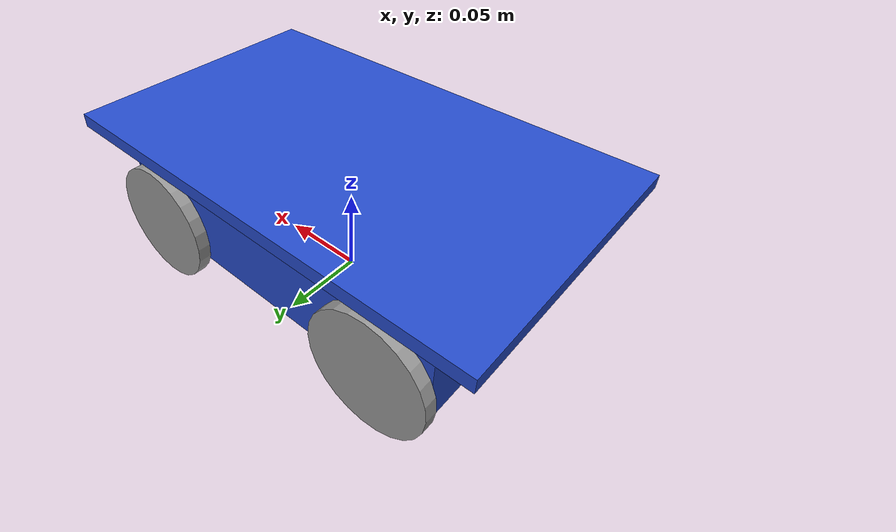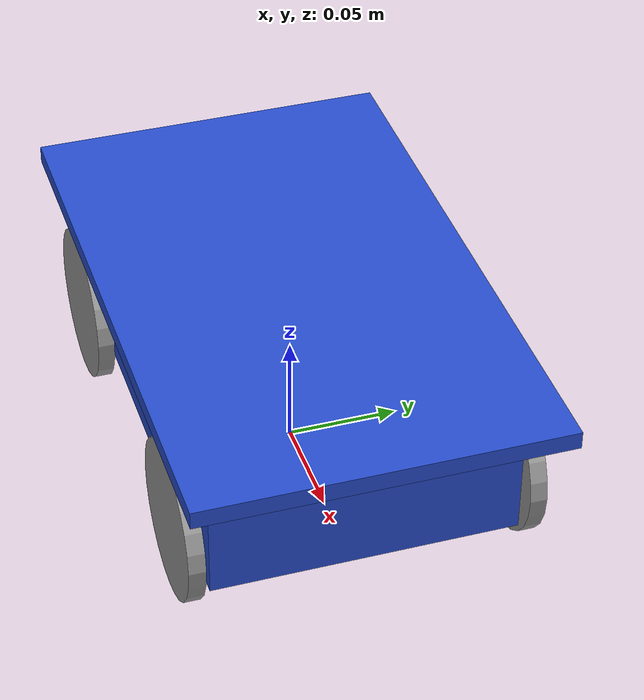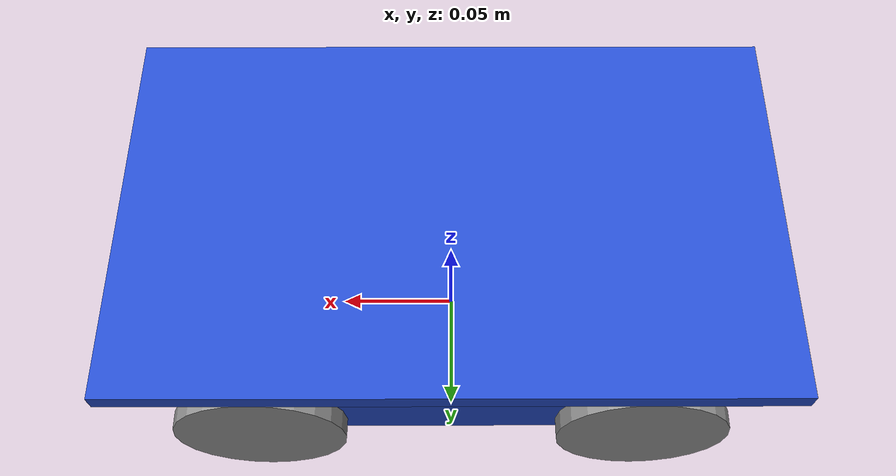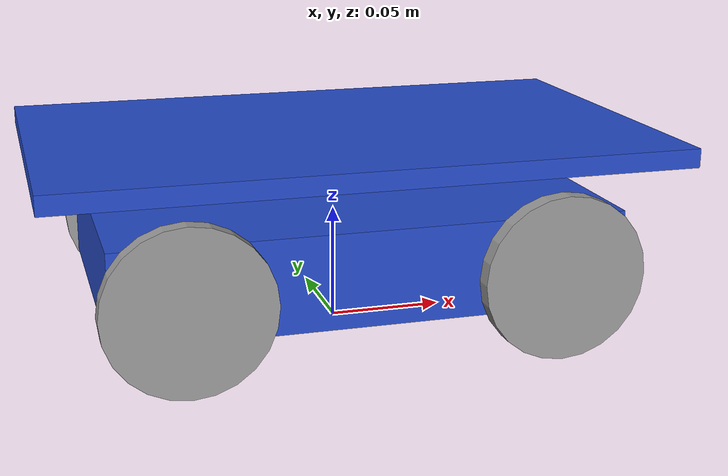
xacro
<?xml version="1.0" encoding="UTF-8"?>
<robot xmlns:xacro="http://www.ros.org/wiki/xacro">
  <xacro:property name="base_length" value="0.215"></xacro:property>
  <xacro:property name="base_width" value="0.135"></xacro:property>
  <xacro:property name="base_height" value="0.04"></xacro:property>
  <xacro:property name="wheel_radius" value="0.035"></xacro:property>
  <xacro:property name="wheel_length" value="0.0075"></xacro:property>
  <link name="base_footprint"></link>
  <link name="base_link">
    <visual>
      <geometry>
        <box size="${base_length} ${base_width} ${base_height}"></box>
      </geometry>
      <origin rpy="0 0 0" xyz="0 0 ${base_height / 2.0}"></origin>
      <material name="blue"></material>
    </visual>
  </link>
  <xacro:macro name="wheel_link" params="prefix">
    <link name="${prefix}_wheel_link">
      <visual>
        <geometry>
          <cylinder length="${wheel_length}" radius="${wheel_radius}"></cylinder>
        </geometry>
        <origin rpy="${pi / 2.0} 0 0" xyz="0 0 0"></origin>
        <material name="grey"></material>
      </visual>
    </link>
  </xacro:macro>
  <xacro:wheel_link prefix="right_1"></xacro:wheel_link>
  <xacro:wheel_link prefix="right_2"></xacro:wheel_link>
  <xacro:wheel_link prefix="left_1"></xacro:wheel_link>
  <xacro:wheel_link prefix="left_2"></xacro:wheel_link>
  <link name="imu_link"></link>
  <joint name="base_imu_joint" type="fixed">
    <parent link="base_link"></parent>
    <child link="imu_link"></child>
    <origin rpy="-${pi / 2.0} -${pi / 2.0} 0" xyz="-${(base_length / 2.0) - 0.08} -${(base_width / 2.0) - 0.06} 0.015"></origin>
  </joint>
  <link name="top_cover">
    <visual>
      <geometry>
        <box size="${0.265} ${0.162} ${0.008}"></box>
      </geometry>
      <origin rpy="0 0 0" xyz="0 0 ${0.008 / 2.0}"></origin>
      <material name="blue"></material>
    </visual>
  </link>
  <joint name="top_cover_joint" type="fixed">
    <parent link="base_link"></parent>
    <child link="top_cover"></child>
    <origin rpy="0 0 0" xyz="0 0 0.06"></origin>
  </joint>
  <joint name="base_joint" type="fixed">
    <parent link="base_footprint"></parent>
    <child link="base_link"></child>
    <origin rpy="0 0 0" xyz="0 0 ${wheel_radius - 0.016}"></origin>
  </joint>
  <joint name="base_right_1_wheel_joint" type="continuous">
    <parent link="base_link"></parent>
    <child link="right_1_wheel_link"></child>
    <origin rpy="0 0 0" xyz="-${((base_length / 2.0) - 0.03)} ${-(base_width + wheel_length + 0.005) / 2.0} 0.016"></origin>
    <axis xyz="0 1 0"></axis>
  </joint>
  <joint name="base_left_1_wheel_joint" type="continuous">
    <parent link="base_link"></parent>
    <child link="left_1_wheel_link"></child>
    <origin rpy="0 0 0" xyz="-${((base_length / 2.0) - 0.03)} ${(base_width + wheel_length+ 0.005) / 2.0} 0.016"></origin>
    <axis xyz="0 1 0"></axis>
  </joint>
  <joint name="base_right_2_wheel_joint" type="continuous">
    <parent link="base_link"></parent>
    <child link="right_2_wheel_link"></child>
    <origin rpy="0 0 0" xyz="${((base_length / 2.0) - 0.03)} ${-(base_width + wheel_length+ 0.005) / 2.0} 0.016"></origin>
    <axis xyz="0 1 0"></axis>
  </joint>
  <joint name="base_left_2_wheel_joint" type="continuous">
    <parent link="base_link"></parent>
    <child link="left_2_wheel_link"></child>
    <origin rpy="0 0 0" xyz="${((base_length / 2.0) - 0.03)} ${(base_width + wheel_length+ 0.005) / 2.0} 0.016"></origin>
    <axis xyz="0 1 0"></axis>
  </joint>
</robot>
